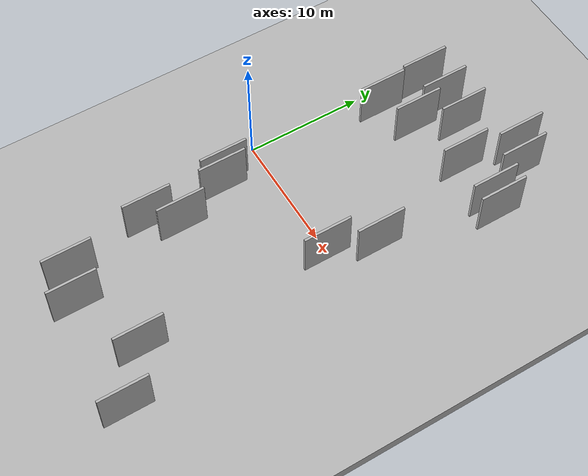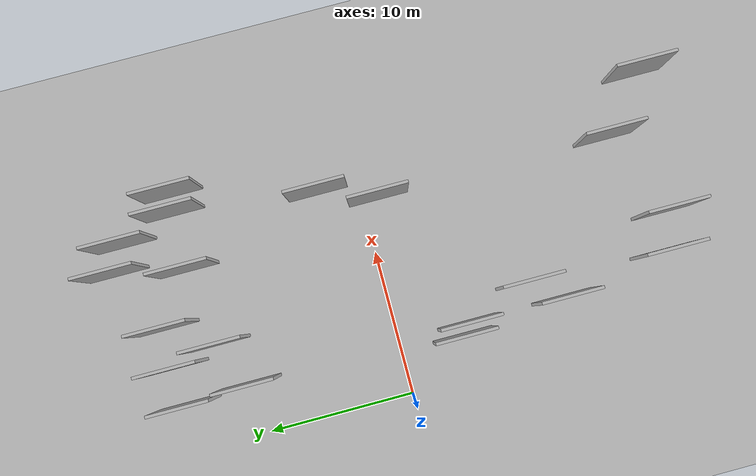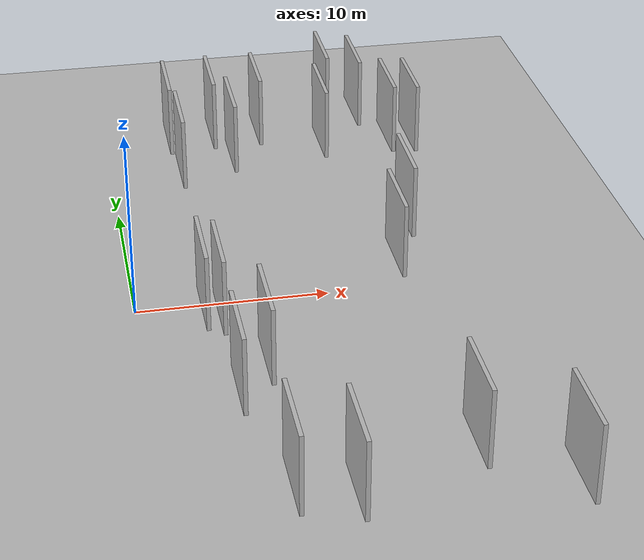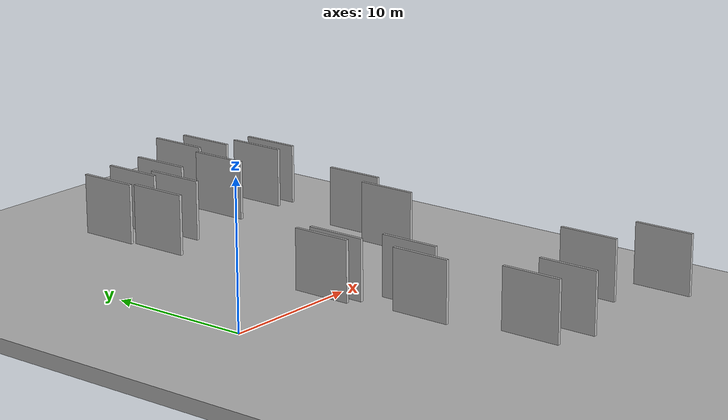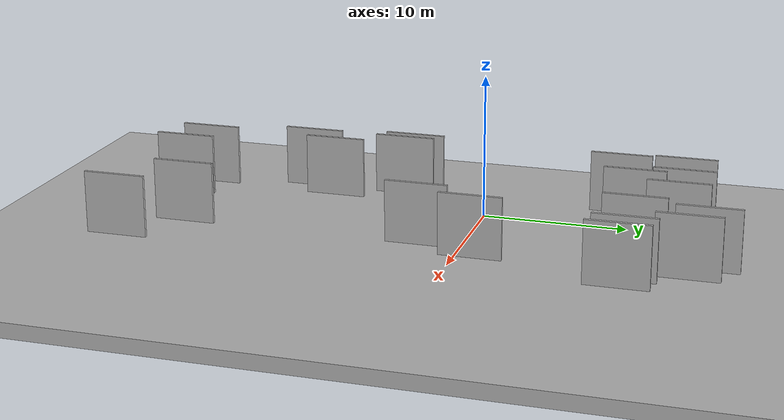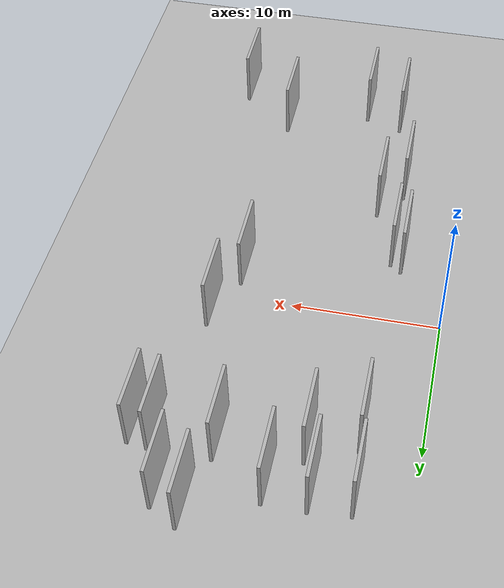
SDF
<?xml version="1.0" encoding="utf-8"?>

<sdf version="1.6">

   <world name="default">

      <gui fullscreen="0">

         <camera name="user_camera">

            <pose>-15 0 4.57585 0 0 0</pose>

            <view_controller>orbit</view_controller>

         </camera>

      </gui>

      <scene>

         <sky>

           <clouds>

             <speed>12</speed>

           </clouds>

         </sky>

         <ambient>0.4 0.4 0.4 1</ambient>

         <background>0.7 0.7 0.7 1</background>

         <shadows>1</shadows>

      </scene>

      <gravity>0 0 -9.8066</gravity>

      <magnetic_field>6e-06 2.3e-05 -4.2e-05</magnetic_field>

      <physics default="0" name="default_physics" type="ode">

         <ode>

            <solver>

               <type>quick</type>

               <iters>10</iters>

               <sor>1.0</sor>

               <use_dynamic_moi_rescaling>0</use_dynamic_moi_rescaling>

            </solver>

            <constraints>

               <cfm>0</cfm>

               <erp>0.2</erp>

               <contact_max_correcting_vel>100</contact_max_correcting_vel>

               <contact_surface_layer>0.001</contact_surface_layer>

            </constraints>

         </ode>

         <max_step_size>0.004</max_step_size>

         <real_time_factor>1</real_time_factor>

         <real_time_update_rate>250</real_time_update_rate>

      </physics>

      <light name="sun" type="directional">

         <cast_shadows>1</cast_shadows>

         <pose>0 0 10 0 0 0</pose>

         <diffuse>0.8 0.8 0.8 1</diffuse>

         <specular>0.2 0.2 0.2 1</specular>

         <attenuation>

            <range>1000</range>

            <constant>0.9</constant>

            <linear>0.01</linear>

            <quadratic>0.001</quadratic>

         </attenuation>

         <direction>-0.5 0.1 -0.9</direction>

      </light>

      <include>

         <name>ground_plane_1</name>

         <uri>model://HANNAS_ground_plane</uri>

         <pose>0 0 0  0 0 0</pose>

      </include>

      <include>

         <name>ground_plane_2</name>

         <uri>model://HANNAS_ground_plane</uri>

         <pose>100 0 0  0 0 0</pose>

      </include>

      <model name="HANNAS_wall_1">

         <static>1</static>

         <pose frame="">14.4978 15.8046 2.5 0.000000 0.000000 1.570796</pose>

         <link name="link">

            <pose frame="">0 0 2.00 0 0 0</pose>

            <collision name="collision">

               <geometry>

                  <box>

                     <size>4.00 0.2 4.00</size>

                  </box>

               </geometry>

               <max_contacts>10</max_contacts>

               <surface>

                  <contact>

                     <ode/>

                  </contact>

                  <bounce/>

                  <friction>

                     <torsional>

                        <ode/>

                     </torsional>

                     <ode/>

                  </friction>

               </surface>

            </collision>

            <visual name="visual">

               <cast_shadows>0</cast_shadows>

               <geometry>

                  <box>

                     <size>4.00 0.2 4.00</size>

                  </box>

               </geometry>

               <material>

                  <script>

                     <uri>model://HANNAS_wall/materials/scripts</uri>

                     <uri>model://HANNAS_wall/materials/textures</uri>

                     <name>vrc/HANNAS_wall</name>

                  </script>

               </material>

            </visual>

            <self_collide>0</self_collide>

            <enable_wind>0</enable_wind>

            <kinematic>0</kinematic>

         </link>

      </model>

      <model name="HANNAS_wall_2">

         <static>1</static>

         <pose frame="">16.9413 -19.6625 2.5 0.000000 0.000000 1.570796</pose>

         <link name="link">

            <pose frame="">0 0 2.00 0 0 0</pose>

            <collision name="collision">

               <geometry>

                  <box>

                     <size>4.00 0.2 4.00</size>

                  </box>

               </geometry>

               <max_contacts>10</max_contacts>

               <surface>

                  <contact>

                     <ode/>

                  </contact>

                  <bounce/>

                  <friction>

                     <torsional>

                        <ode/>

                     </torsional>

                     <ode/>

                  </friction>

               </surface>

            </collision>

            <visual name="visual">

               <cast_shadows>0</cast_shadows>

               <geometry>

                  <box>

                     <size>4.00 0.2 4.00</size>

                  </box>

               </geometry>

               <material>

                  <script>

                     <uri>model://HANNAS_wall/materials/scripts</uri>

                     <uri>model://HANNAS_wall/materials/textures</uri>

                     <name>vrc/HANNAS_wall</name>

                  </script>

               </material>

            </visual>

            <self_collide>0</self_collide>

            <enable_wind>0</enable_wind>

            <kinematic>0</kinematic>

         </link>

      </model>

      <model name="HANNAS_wall_3">

         <static>1</static>

         <pose frame="">13.2598 -16.6153 2.5 0.000000 0.000000 1.570796</pose>

         <link name="link">

            <pose frame="">0 0 2.00 0 0 0</pose>

            <collision name="collision">

               <geometry>

                  <box>

                     <size>4.00 0.2 4.00</size>

                  </box>

               </geometry>

               <max_contacts>10</max_contacts>

               <surface>

                  <contact>

                     <ode/>

                  </contact>

                  <bounce/>

                  <friction>

                     <torsional>

                        <ode/>

                     </torsional>

                     <ode/>

                  </friction>

               </surface>

            </collision>

            <visual name="visual">

               <cast_shadows>0</cast_shadows>

               <geometry>

                  <box>

                     <size>4.00 0.2 4.00</size>

                  </box>

               </geometry>

               <material>

                  <script>

                     <uri>model://HANNAS_wall/materials/scripts</uri>

                     <uri>model://HANNAS_wall/materials/textures</uri>

                     <name>vrc/HANNAS_wall</name>

                  </script>

               </material>

            </visual>

            <self_collide>0</self_collide>

            <enable_wind>0</enable_wind>

            <kinematic>0</kinematic>

         </link>

      </model>

      <model name="HANNAS_wall_4">

         <static>1</static>

         <pose frame="">11.8669 12.2035 2.5 0.000000 0.000000 1.570796</pose>

         <link name="link">

            <pose frame="">0 0 2.00 0 0 0</pose>

            <collision name="collision">

               <geometry>

                  <box>

                     <size>4.00 0.2 4.00</size>

                  </box>

               </geometry>

               <max_contacts>10</max_contacts>

               <surface>

                  <contact>

                     <ode/>

                  </contact>

                  <bounce/>

                  <friction>

                     <torsional>

                        <ode/>

                     </torsional>

                     <ode/>

                  </friction>

               </surface>

            </collision>

            <visual name="visual">

               <cast_shadows>0</cast_shadows>

               <geometry>

                  <box>

                     <size>4.00 0.2 4.00</size>

                  </box>

               </geometry>

               <material>

                  <script>

                     <uri>model://HANNAS_wall/materials/scripts</uri>

                     <uri>model://HANNAS_wall/materials/textures</uri>

                     <name>vrc/HANNAS_wall</name>

                  </script>

               </material>

            </visual>

            <self_collide>0</self_collide>

            <enable_wind>0</enable_wind>

            <kinematic>0</kinematic>

         </link>

      </model>

      <model name="HANNAS_wall_5">

         <static>1</static>

         <pose frame="">14.6195 2.6889 2.5 0.000000 0.000000 1.570796</pose>

         <link name="link">

            <pose frame="">0 0 2.00 0 0 0</pose>

            <collision name="collision">

               <geometry>

                  <box>

                     <size>4.00 0.2 4.00</size>

                  </box>

               </geometry>

               <max_contacts>10</max_contacts>

               <surface>

                  <contact>

                     <ode/>

                  </contact>

                  <bounce/>

                  <friction>

                     <torsional>

                        <ode/>

                     </torsional>

                     <ode/>

                  </friction>

               </surface>

            </collision>

            <visual name="visual">

               <cast_shadows>0</cast_shadows>

               <geometry>

                  <box>

                     <size>4.00 0.2 4.00</size>

                  </box>

               </geometry>

               <material>

                  <script>

                     <uri>model://HANNAS_wall/materials/scripts</uri>

                     <uri>model://HANNAS_wall/materials/textures</uri>

                     <name>vrc/HANNAS_wall</name>

                  </script>

               </material>

            </visual>

            <self_collide>0</self_collide>

            <enable_wind>0</enable_wind>

            <kinematic>0</kinematic>

         </link>

      </model>

      <model name="HANNAS_wall_6">

         <static>1</static>

         <pose frame="">6.6406 11.3813 2.5 0.000000 0.000000 1.570796</pose>

         <link name="link">

            <pose frame="">0 0 2.00 0 0 0</pose>

            <collision name="collision">

               <geometry>

                  <box>

                     <size>4.00 0.2 4.00</size>

                  </box>

               </geometry>

               <max_contacts>10</max_contacts>

               <surface>

                  <contact>

                     <ode/>

                  </contact>

                  <bounce/>

                  <friction>

                     <torsional>

                        <ode/>

                     </torsional>

                     <ode/>

                  </friction>

               </surface>

            </collision>

            <visual name="visual">

               <cast_shadows>0</cast_shadows>

               <geometry>

                  <box>

                     <size>4.00 0.2 4.00</size>

                  </box>

               </geometry>

               <material>

                  <script>

                     <uri>model://HANNAS_wall/materials/scripts</uri>

                     <uri>model://HANNAS_wall/materials/textures</uri>

                     <name>vrc/HANNAS_wall</name>

                  </script>

               </material>

            </visual>

            <self_collide>0</self_collide>

            <enable_wind>0</enable_wind>

            <kinematic>0</kinematic>

         </link>

      </model>

      <model name="HANNAS_wall_7">

         <static>1</static>

         <pose frame="">5.3689 -9.0297 2.5 0.000000 0.000000 1.570796</pose>

         <link name="link">

            <pose frame="">0 0 2.00 0 0 0</pose>

            <collision name="collision">

               <geometry>

                  <box>

                     <size>4.00 0.2 4.00</size>

                  </box>

               </geometry>

               <max_contacts>10</max_contacts>

               <surface>

                  <contact>

                     <ode/>

                  </contact>

                  <bounce/>

                  <friction>

                     <torsional>

                        <ode/>

                     </torsional>

                     <ode/>

                  </friction>

               </surface>

            </collision>

            <visual name="visual">

               <cast_shadows>0</cast_shadows>

               <geometry>

                  <box>

                     <size>4.00 0.2 4.00</size>

                  </box>

               </geometry>

               <material>

                  <script>

                     <uri>model://HANNAS_wall/materials/scripts</uri>

                     <uri>model://HANNAS_wall/materials/textures</uri>

                     <name>vrc/HANNAS_wall</name>

                  </script>

               </material>

            </visual>

            <self_collide>0</self_collide>

            <enable_wind>0</enable_wind>

            <kinematic>0</kinematic>

         </link>

      </model>

      <model name="HANNAS_wall_8">

         <static>1</static>

         <pose frame="">3.0686 -4.0976 2.5 0.000000 0.000000 1.570796</pose>

         <link name="link">

            <pose frame="">0 0 2.00 0 0 0</pose>

            <collision name="collision">

               <geometry>

                  <box>

                     <size>4.00 0.2 4.00</size>

                  </box>

               </geometry>

               <max_contacts>10</max_contacts>

               <surface>

                  <contact>

                     <ode/>

                  </contact>

                  <bounce/>

                  <friction>

                     <torsional>

                        <ode/>

                     </torsional>

                     <ode/>

                  </friction>

               </surface>

            </collision>

            <visual name="visual">

               <cast_shadows>0</cast_shadows>

               <geometry>

                  <box>

                     <size>4.00 0.2 4.00</size>

                  </box>

               </geometry>

               <material>

                  <script>

                     <uri>model://HANNAS_wall/materials/scripts</uri>

                     <uri>model://HANNAS_wall/materials/textures</uri>

                     <name>vrc/HANNAS_wall</name>

                  </script>

               </material>

            </visual>

            <self_collide>0</self_collide>

            <enable_wind>0</enable_wind>

            <kinematic>0</kinematic>

         </link>

      </model>

      <model name="HANNAS_wall_9">

         <static>1</static>

         <pose frame="">3.3717 14.1880 2.5 0.000000 0.000000 1.570796</pose>

         <link name="link">

            <pose frame="">0 0 2.00 0 0 0</pose>

            <collision name="collision">

               <geometry>

                  <box>

                     <size>4.00 0.2 4.00</size>

                  </box>

               </geometry>

               <max_contacts>10</max_contacts>

               <surface>

                  <contact>

                     <ode/>

                  </contact>

                  <bounce/>

                  <friction>

                     <torsional>

                        <ode/>

                     </torsional>

                     <ode/>

                  </friction>

               </surface>

            </collision>

            <visual name="visual">

               <cast_shadows>0</cast_shadows>

               <geometry>

                  <box>

                     <size>4.00 0.2 4.00</size>

                  </box>

               </geometry>

               <material>

                  <script>

                     <uri>model://HANNAS_wall/materials/scripts</uri>

                     <uri>model://HANNAS_wall/materials/textures</uri>

                     <name>vrc/HANNAS_wall</name>

                  </script>

               </material>

            </visual>

            <self_collide>0</self_collide>

            <enable_wind>0</enable_wind>

            <kinematic>0</kinematic>

         </link>

      </model>

      <model name="HANNAS_wall_10">

         <static>1</static>

         <pose frame="">5.8685 14.4140 2.5 0.000000 0.000000 1.570796</pose>

         <link name="link">

            <pose frame="">0 0 2.00 0 0 0</pose>

            <collision name="collision">

               <geometry>

                  <box>

                     <size>4.00 0.2 4.00</size>

                  </box>

               </geometry>

               <max_contacts>10</max_contacts>

               <surface>

                  <contact>

                     <ode/>

                  </contact>

                  <bounce/>

                  <friction>

                     <torsional>

                        <ode/>

                     </torsional>

                     <ode/>

                  </friction>

               </surface>

            </collision>

            <visual name="visual">

               <cast_shadows>0</cast_shadows>

               <geometry>

                  <box>

                     <size>4.00 0.2 4.00</size>

                  </box>

               </geometry>

               <material>

                  <script>

                     <uri>model://HANNAS_wall/materials/scripts</uri>

                     <uri>model://HANNAS_wall/materials/textures</uri>

                     <name>vrc/HANNAS_wall</name>

                  </script>

               </material>

            </visual>

            <self_collide>0</self_collide>

            <enable_wind>0</enable_wind>

            <kinematic>0</kinematic>

         </link>

      </model>

      <model name="HANNAS_wall_11">

         <static>1</static>

         <pose frame="">3.7857 -11.0595 2.5 0.000000 0.000000 1.570796</pose>

         <link name="link">

            <pose frame="">0 0 2.00 0 0 0</pose>

            <collision name="collision">

               <geometry>

                  <box>

                     <size>4.00 0.2 4.00</size>

                  </box>

               </geometry>

               <max_contacts>10</max_contacts>

               <surface>

                  <contact>

                     <ode/>

                  </contact>

                  <bounce/>

                  <friction>

                     <torsional>

                        <ode/>

                     </torsional>

                     <ode/>

                  </friction>

               </surface>

            </collision>

            <visual name="visual">

               <cast_shadows>0</cast_shadows>

               <geometry>

                  <box>

                     <size>4.00 0.2 4.00</size>

                  </box>

               </geometry>

               <material>

                  <script>

                     <uri>model://HANNAS_wall/materials/scripts</uri>

                     <uri>model://HANNAS_wall/materials/textures</uri>

                     <name>vrc/HANNAS_wall</name>

                  </script>

               </material>

            </visual>

            <self_collide>0</self_collide>

            <enable_wind>0</enable_wind>

            <kinematic>0</kinematic>

         </link>

      </model>

      <model name="HANNAS_wall_12">

         <static>1</static>

         <pose frame="">3.6339 10.0397 2.5 0.000000 0.000000 1.570796</pose>

         <link name="link">

            <pose frame="">0 0 2.00 0 0 0</pose>

            <collision name="collision">

               <geometry>

                  <box>

                     <size>4.00 0.2 4.00</size>

                  </box>

               </geometry>

               <max_contacts>10</max_contacts>

               <surface>

                  <contact>

                     <ode/>

                  </contact>

                  <bounce/>

                  <friction>

                     <torsional>

                        <ode/>

                     </torsional>

                     <ode/>

                  </friction>

               </surface>

            </collision>

            <visual name="visual">

               <cast_shadows>0</cast_shadows>

               <geometry>

                  <box>

                     <size>4.00 0.2 4.00</size>

                  </box>

               </geometry>

               <material>

                  <script>

                     <uri>model://HANNAS_wall/materials/scripts</uri>

                     <uri>model://HANNAS_wall/materials/textures</uri>

                     <name>vrc/HANNAS_wall</name>

                  </script>

               </material>

            </visual>

            <self_collide>0</self_collide>

            <enable_wind>0</enable_wind>

            <kinematic>0</kinematic>

         </link>

      </model>

      <model name="HANNAS_wall_13">

         <static>1</static>

         <pose frame="">12.7728 16.7515 2.5 0.000000 0.000000 1.570796</pose>

         <link name="link">

            <pose frame="">0 0 2.00 0 0 0</pose>

            <collision name="collision">

               <geometry>

                  <box>

                     <size>4.00 0.2 4.00</size>

                  </box>

               </geometry>

               <max_contacts>10</max_contacts>

               <surface>

                  <contact>

                     <ode/>

                  </contact>

                  <bounce/>

                  <friction>

                     <torsional>

                        <ode/>

                     </torsional>

                     <ode/>

                  </friction>

               </surface>

            </collision>

            <visual name="visual">

               <cast_shadows>0</cast_shadows>

               <geometry>

                  <box>

                     <size>4.00 0.2 4.00</size>

                  </box>

               </geometry>

               <material>

                  <script>

                     <uri>model://HANNAS_wall/materials/scripts</uri>

                     <uri>model://HANNAS_wall/materials/textures</uri>

                     <name>vrc/HANNAS_wall</name>

                  </script>

               </material>

            </visual>

            <self_collide>0</self_collide>

            <enable_wind>0</enable_wind>

            <kinematic>0</kinematic>

         </link>

      </model>

      <model name="HANNAS_wall_14">

         <static>1</static>

         <pose frame="">15.7249 12.2210 2.5 0.000000 0.000000 1.570796</pose>

         <link name="link">

            <pose frame="">0 0 2.00 0 0 0</pose>

            <collision name="collision">

               <geometry>

                  <box>

                     <size>4.00 0.2 4.00</size>

                  </box>

               </geometry>

               <max_contacts>10</max_contacts>

               <surface>

                  <contact>

                     <ode/>

                  </contact>

                  <bounce/>

                  <friction>

                     <torsional>

                        <ode/>

                     </torsional>

                     <ode/>

                  </friction>

               </surface>

            </collision>

            <visual name="visual">

               <cast_shadows>0</cast_shadows>

               <geometry>

                  <box>

                     <size>4.00 0.2 4.00</size>

                  </box>

               </geometry>

               <material>

                  <script>

                     <uri>model://HANNAS_wall/materials/scripts</uri>

                     <uri>model://HANNAS_wall/materials/textures</uri>

                     <name>vrc/HANNAS_wall</name>

                  </script>

               </material>

            </visual>

            <self_collide>0</self_collide>

            <enable_wind>0</enable_wind>

            <kinematic>0</kinematic>

         </link>

      </model>

      <model name="HANNAS_wall_15">

         <static>1</static>

         <pose frame="">16.9955 12.0307 2.5 0.000000 0.000000 1.570796</pose>

         <link name="link">

            <pose frame="">0 0 2.00 0 0 0</pose>

            <collision name="collision">

               <geometry>

                  <box>

                     <size>4.00 0.2 4.00</size>

                  </box>

               </geometry>

               <max_contacts>10</max_contacts>

               <surface>

                  <contact>

                     <ode/>

                  </contact>

                  <bounce/>

                  <friction>

                     <torsional>

                        <ode/>

                     </torsional>

                     <ode/>

                  </friction>

               </surface>

            </collision>

            <visual name="visual">

               <cast_shadows>0</cast_shadows>

               <geometry>

                  <box>

                     <size>4.00 0.2 4.00</size>

                  </box>

               </geometry>

               <material>

                  <script>

                     <uri>model://HANNAS_wall/materials/scripts</uri>

                     <uri>model://HANNAS_wall/materials/textures</uri>

                     <name>vrc/HANNAS_wall</name>

                  </script>

               </material>

            </visual>

            <self_collide>0</self_collide>

            <enable_wind>0</enable_wind>

            <kinematic>0</kinematic>

         </link>

      </model>

      <model name="HANNAS_wall_16">

         <static>1</static>

         <pose frame="">7.5208 -18.9942 2.5 0.000000 0.000000 1.570796</pose>

         <link name="link">

            <pose frame="">0 0 2.00 0 0 0</pose>

            <collision name="collision">

               <geometry>

                  <box>

                     <size>4.00 0.2 4.00</size>

                  </box>

               </geometry>

               <max_contacts>10</max_contacts>

               <surface>

                  <contact>

                     <ode/>

                  </contact>

                  <bounce/>

                  <friction>

                     <torsional>

                        <ode/>

                     </torsional>

                     <ode/>

                  </friction>

               </surface>

            </collision>

            <visual name="visual">

               <cast_shadows>0</cast_shadows>

               <geometry>

                  <box>

                     <size>4.00 0.2 4.00</size>

                  </box>

               </geometry>

               <material>

                  <script>

                     <uri>model://HANNAS_wall/materials/scripts</uri>

                     <uri>model://HANNAS_wall/materials/textures</uri>

                     <name>vrc/HANNAS_wall</name>

                  </script>

               </material>

            </visual>

            <self_collide>0</self_collide>

            <enable_wind>0</enable_wind>

            <kinematic>0</kinematic>

         </link>

      </model>

      <model name="HANNAS_wall_17">

         <static>1</static>

         <pose frame="">13.2595 -1.0885 2.5 0.000000 0.000000 1.570796</pose>

         <link name="link">

            <pose frame="">0 0 2.00 0 0 0</pose>

            <collision name="collision">

               <geometry>

                  <box>

                     <size>4.00 0.2 4.00</size>

                  </box>

               </geometry>

               <max_contacts>10</max_contacts>

               <surface>

                  <contact>

                     <ode/>

                  </contact>

                  <bounce/>

                  <friction>

                     <torsional>

                        <ode/>

                     </torsional>

                     <ode/>

                  </friction>

               </surface>

            </collision>

            <visual name="visual">

               <cast_shadows>0</cast_shadows>

               <geometry>

                  <box>

                     <size>4.00 0.2 4.00</size>

                  </box>

               </geometry>

               <material>

                  <script>

                     <uri>model://HANNAS_wall/materials/scripts</uri>

                     <uri>model://HANNAS_wall/materials/textures</uri>

                     <name>vrc/HANNAS_wall</name>

                  </script>

               </material>

            </visual>

            <self_collide>0</self_collide>

            <enable_wind>0</enable_wind>

            <kinematic>0</kinematic>

         </link>

      </model>

      <model name="HANNAS_wall_18">

         <static>1</static>

         <pose frame="">8.4962 14.4006 2.5 0.000000 0.000000 1.570796</pose>

         <link name="link">

            <pose frame="">0 0 2.00 0 0 0</pose>

            <collision name="collision">

               <geometry>

                  <box>

                     <size>4.00 0.2 4.00</size>

                  </box>

               </geometry>

               <max_contacts>10</max_contacts>

               <surface>

                  <contact>

                     <ode/>

                  </contact>

                  <bounce/>

                  <friction>

                     <torsional>

                        <ode/>

                     </torsional>

                     <ode/>

                  </friction>

               </surface>

            </collision>

            <visual name="visual">

               <cast_shadows>0</cast_shadows>

               <geometry>

                  <box>

                     <size>4.00 0.2 4.00</size>

                  </box>

               </geometry>

               <material>

                  <script>

                     <uri>model://HANNAS_wall/materials/scripts</uri>

                     <uri>model://HANNAS_wall/materials/textures</uri>

                     <name>vrc/HANNAS_wall</name>

                  </script>

               </material>

            </visual>

            <self_collide>0</self_collide>

            <enable_wind>0</enable_wind>

            <kinematic>0</kinematic>

         </link>

      </model>

      <model name="HANNAS_wall_19">

         <static>1</static>

         <pose frame="">3.8045 -4.6182 2.5 0.000000 0.000000 1.570796</pose>

         <link name="link">

            <pose frame="">0 0 2.00 0 0 0</pose>

            <collision name="collision">

               <geometry>

                  <box>

                     <size>4.00 0.2 4.00</size>

                  </box>

               </geometry>

               <max_contacts>10</max_contacts>

               <surface>

                  <contact>

                     <ode/>

                  </contact>

                  <bounce/>

                  <friction>

                     <torsional>

                        <ode/>

                     </torsional>

                     <ode/>

                  </friction>

               </surface>

            </collision>

            <visual name="visual">

               <cast_shadows>0</cast_shadows>

               <geometry>

                  <box>

                     <size>4.00 0.2 4.00</size>

                  </box>

               </geometry>

               <material>

                  <script>

                     <uri>model://HANNAS_wall/materials/scripts</uri>

                     <uri>model://HANNAS_wall/materials/textures</uri>

                     <name>vrc/HANNAS_wall</name>

                  </script>

               </material>

            </visual>

            <self_collide>0</self_collide>

            <enable_wind>0</enable_wind>

            <kinematic>0</kinematic>

         </link>

      </model>

      <model name="HANNAS_wall_20">

         <static>1</static>

         <pose frame="">4.9858 -18.1727 2.5 0.000000 0.000000 1.570796</pose>

         <link name="link">

            <pose frame="">0 0 2.00 0 0 0</pose>

            <collision name="collision">

               <geometry>

                  <box>

                     <size>4.00 0.2 4.00</size>

                  </box>

               </geometry>

               <max_contacts>10</max_contacts>

               <surface>

                  <contact>

                     <ode/>

                  </contact>

                  <bounce/>

                  <friction>

                     <torsional>

                        <ode/>

                     </torsional>

                     <ode/>

                  </friction>

               </surface>

            </collision>

            <visual name="visual">

               <cast_shadows>0</cast_shadows>

               <geometry>

                  <box>

                     <size>4.00 0.2 4.00</size>

                  </box>

               </geometry>

               <material>

                  <script>

                     <uri>model://HANNAS_wall/materials/scripts</uri>

                     <uri>model://HANNAS_wall/materials/textures</uri>

                     <name>vrc/HANNAS_wall</name>

                  </script>

               </material>

            </visual>

            <self_collide>0</self_collide>

            <enable_wind>0</enable_wind>

            <kinematic>0</kinematic>

         </link>

      </model>

   </world>

</sdf>

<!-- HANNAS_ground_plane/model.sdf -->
<sdf version="1.4">
<model name="HANNAS_ground_plane">
  <static>true</static>
    <link name="link">
      <collision name="collision">
        <geometry>
          <plane>
            <normal>0 0 1</normal>
            <size>1000 1000</size>
          </plane>
        </geometry>
        <surface>
          <friction>
            <ode>
              <mu>100</mu>
              <mu2>50</mu2>
            </ode>
          </friction>
        </surface>
      </collision>
      <visual name="visual">
        <cast_shadows>false</cast_shadows>
        <geometry>
          <plane>
            <normal>0 0 1</normal>
            <size>1000 1000</size>
          </plane>
        </geometry>
        <material>
          <script>
            <uri>model://HANNAS_ground_plane/materials/scripts/HANNAS_ground_plane.material</uri>
	    <uri>model://HANNAS_ground_plane/materials/textures</uri>
            <name>HANNASGroundPlane/Image</name>
          </script>
        </material>
      </visual>
    </link>
  </model>
</sdf>
